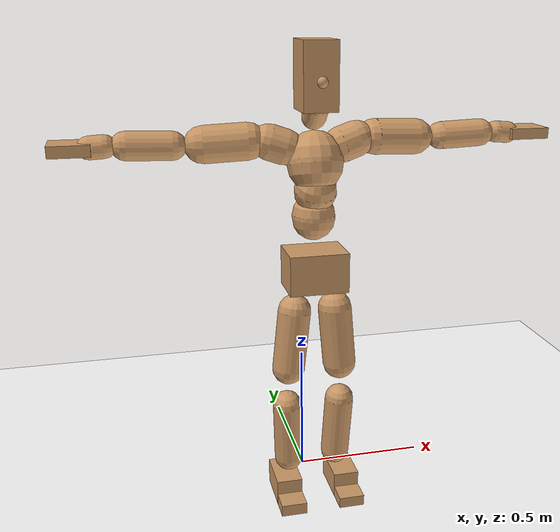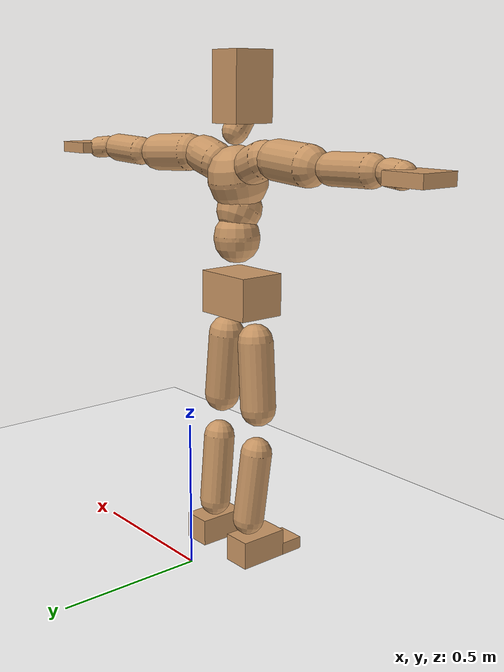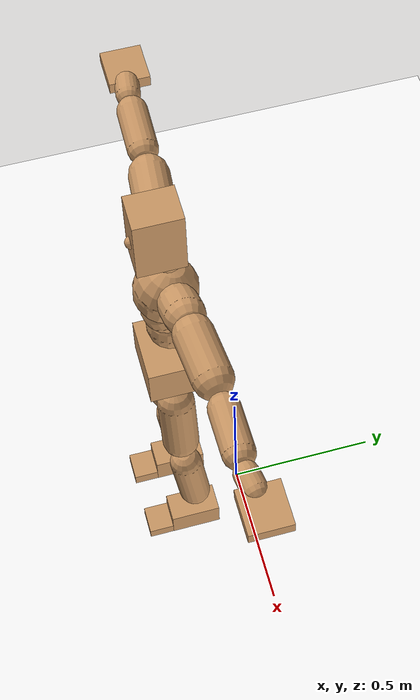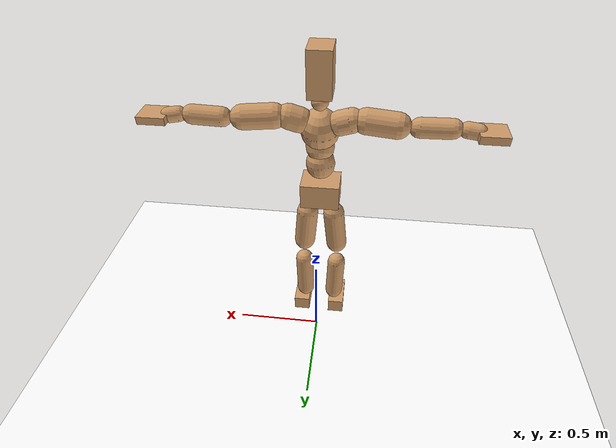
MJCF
<mujoco model="humanoid">
  <option integrator="implicitfast" />

  <visual>
    <global offwidth="1280" offheight="960" />
    <headlight active="1" ambient="0.34 0.34 0.34" diffuse="0.5 0.5 0.5" />
  </visual>

  <default>
    <joint damping="2" stiffness="2" armature="0.01" limited="true" solimplimit="0 .99 .01" />
    <geom condim="1" friction="0.7 0.005 0.0001" solimp=".99 .99 .003" solref="0.015 1" margin="0.001" rgba="0.8 0.6 .4 1" />
    <default class="smplcontact">
      <geom condim="3" friction="1. 0.005 0.0001" solref="0.015 1" solimp="0.98 0.98 0.001" priority="1" />
    </default>
    <default class="stiff_medium">
      <joint stiffness="10" />
    </default>
    <default class="stiff_medium_higher">
      <joint stiffness="50" />
    </default>
    <default class="stiff_high">
      <joint stiffness="100" />
    </default>
  </default>

  <asset>
    <texture type="skybox" builtin="gradient" rgb1="0.99 0.99 0.99" rgb2="0.608 0.828 0.892" width="100" />
    <texture builtin="flat" height="1278" mark="cross" markrgb="1 1 1" name="texgeom" random="0.01" rgb1="0.8 0.6 0.4" rgb2="0.8 0.6 0.4" type="cube" width="127" />
    <texture name="texplane" type="2d" builtin="checker" markrgb="1 1 1" rgb1="0.756 0.772 0.76" rgb2="0.6 0.6 0.6" width="100" height="100" />
    <material name="MatPlane" reflectance="0.5" texture="texplane" texrepeat="1 1" texuniform="true" />
    <material name="geom" texture="texgeom" texuniform="true" />
  </asset>

  <worldbody>
    <light name="tracking_light" pos="0 0 7" dir="0 0 -1" directional="true" cutoff="100" exponent="1" diffuse="1 1 1" specular="0.1 0.1 0.1" mode="trackcom" />
    <camera name="back" pos="0 3 2.4" xyaxes="-1 0 0 0 -1 2" mode="trackcom" />
    <camera name="side" pos="-3 0 2.4" xyaxes="0 -1 0 1 0 2" mode="trackcom" />
    <camera name="front_side" pos="-2.8 -2.8 0.8" xyaxes="0.5 -0.5 0 0.1 0.1 1" mode="trackcom" />
    <geom condim="3" name="floor" pos="0 0 0" rgba="1 1 1 1" size="100 100 .2" type="plane" material="MatPlane" />
    <body name="Pelvis" pos="-0.0018 -0.2233 0.9367" euler="90 0 0">
      <site name="Pelvis" size="0.01" />
      <freejoint name="Pelvis" />
      <geom type="box" pos="-0.0000 -0.0121 -0.0055" size="0.1069 0.0722 0.083" quat="1.0000 0.0000 0.0000 0.0000" density="3165.830099" name="Pelvis" />
      <body name="L_Hip" pos="0.0695 -0.0914 -0.0068">
        <joint name="L_Hip_x" type="hinge" pos="0 0 0" axis="1 0 0" stiffness="10.0" range="-160.0 22.92" class="stiff_medium" damping="14.999999999999998" armature="0.009999999999999998"/>
        <joint name="L_Hip_y" type="hinge" pos="0 0 0" axis="0 1 0" stiffness="10.0" range="-70.0 70.0" class="stiff_medium" damping="10.000000000000004" armature="0.010000000000000009"/>
        <joint name="L_Hip_z" type="hinge" pos="0 0 0" axis="0 0 1" stiffness="10.0" range="-28.65 90.0" class="stiff_medium" damping="10.0" armature="0.01"/>
        <geom type="capsule" density="2040.816327" fromto="0.0069 -0.075 -0.0009 0.0274 -0.3002 -0.0036" size="0.0615" name="L_Hip" />
        <body name="L_Knee" pos="0.0343 -0.3752 -0.0045">
          <joint name="L_Knee_x" type="hinge" pos="0 0 0" axis="1 0 0" range="-5.16 171.89" damping="7.999999999999999" armature="0.009999999999999998" stiffness="2.0"/>
          <joint name="L_Knee_y" type="hinge" pos="0 0 0" axis="0 1 0" range="-4.58 6.88" damping="8.000000000000005" armature="0.010000000000000014" stiffness="2.0"/>
          <joint name="L_Knee_z" type="hinge" pos="0 0 0" axis="0 0 1" range="-6.88 4.58" damping="7.999999999999997" armature="0.009999999999999993" stiffness="2.0"/>
          <geom type="capsule" density="1234.567901" fromto="-0.0027 -0.0796 -0.0087 -0.0109 -0.3184 -0.035" size="0.0541" name="L_Knee" />
          <body name="L_Ankle" pos="-0.0136 -0.398 -0.0437">
            <joint name="L_Ankle_x" type="hinge" pos="0 0 0" axis="1 0 0" range="-45.84 45.84" class="stiff_medium" damping="5.999999999999975" armature="0.009999999999999915" stiffness="10.0"/>
            <joint name="L_Ankle_y" type="hinge" pos="0 0 0" axis="0 1 0" range="-74.48 22.92" class="stiff_medium" damping="3.0" armature="0.01" stiffness="10.0"/>
            <joint name="L_Ankle_z" type="hinge" pos="0 0 0" axis="0 0 1" range="-4.58 4.58" class="stiff_medium" damping="5.999999999999662" armature="0.009999999999998873" stiffness="10.0"/>
            <geom type="box" pos="0.0233 -0.0239 0.0242" size="0.0483 0.0464 0.085" quat="1.0000 0.0000 0.0000 0.0000" density="449.071558" name="L_Ankle" class="smplcontact" />
            <body name="L_Toe" pos="0.0264 -0.0558 0.1193">
              <joint name="L_Toe_x" type="hinge" pos="0 0 0" axis="1 0 0" range="-91.67 22.92" armature="0.0099999999999989" damping="1.99999999999989" stiffness="2.0"/>
              <joint name="L_Toe_y" type="hinge" pos="0 0 0" axis="0 1 0" range="-4.58 4.58" armature="0.009999999999999976" damping="1.9999999999999976" stiffness="2.0"/>
              <joint name="L_Toe_z" type="hinge" pos="0 0 0" axis="0 0 1" range="-4.58 4.58" armature="0.009999999999997719" damping="1.999999999999772" stiffness="2.0"/>
              <geom type="box" pos="-0.003 0.0055 0.0248" size="0.0478 0.02 0.0496" quat="1.0000 0.0000 0.0000 0.0000" density="423.206892" name="L_Toe" class="smplcontact" />
            </body>
          </body>
        </body>
      </body>
      <body name="R_Hip" pos="-0.0677 -0.0905 -0.0043">
        <joint name="R_Hip_x" type="hinge" pos="0 0 0" axis="1 0 0" stiffness="10.0" range="-160.0 22.92" class="stiff_medium" damping="14.999999999999998" armature="0.009999999999999998"/>
        <joint name="R_Hip_y" type="hinge" pos="0 0 0" axis="0 1 0" stiffness="10.0" range="-70.0 70.0" class="stiff_medium" damping="10.000000000000004" armature="0.010000000000000009"/>
        <joint name="R_Hip_z" type="hinge" pos="0 0 0" axis="0 0 1" stiffness="10.0" range="-90.0 28.65" class="stiff_medium" damping="10.0" armature="0.01"/>
        <geom type="capsule" density="2040.816327" fromto="-0.0077 -0.0765 -0.0018 -0.0306 -0.3061 -0.0071" size="0.0606" name="R_Hip" />
        <body name="R_Knee" pos="-0.0383 -0.3826 -0.0089">
          <joint name="R_Knee_x" type="hinge" pos="0 0 0" axis="1 0 0" range="-5.16 171.89" damping="7.999999999999999" armature="0.009999999999999998" stiffness="2.0"/>
          <joint name="R_Knee_y" type="hinge" pos="0 0 0" axis="0 1 0" range="-6.88 4.58" damping="8.000000000000005" armature="0.010000000000000014" stiffness="2.0"/>
          <joint name="R_Knee_z" type="hinge" pos="0 0 0" axis="0 0 1" range="-4.58 6.88" damping="7.999999999999997" armature="0.009999999999999993" stiffness="2.0"/>
          <geom type="capsule" density="1234.567901" fromto="0.0032 -0.0797 -0.0085 0.0126 -0.3187 -0.0338" size="0.0541" name="R_Knee" />
          <body name="R_Ankle" pos="0.0158 -0.3984 -0.0423">
            <joint name="R_Ankle_x" type="hinge" pos="0 0 0" axis="1 0 0" range="-45.84 45.84" class="stiff_medium" damping="5.999999999999975" armature="0.009999999999999915" stiffness="10.0"/>
            <joint name="R_Ankle_y" type="hinge" pos="0 0 0" axis="0 1 0" range="-22.92 74.48" class="stiff_medium" damping="3.0" armature="0.01" stiffness="10.0"/>
            <joint name="R_Ankle_z" type="hinge" pos="0 0 0" axis="0 0 1" range="-4.58 4.58" class="stiff_medium" damping="5.999999999999662" armature="0.009999999999998873" stiffness="10.0"/>
            <geom type="box" pos="-0.0212 -0.0174 0.0256" size="0.0483 0.0478 0.0865" quat="1.0000 0.0000 0.0000 0.0000" density="434.700981" name="R_Ankle" class="smplcontact" />
            <body name="R_Toe" pos="-0.0254 -0.0481 0.1233">
              <joint name="R_Toe_x" type="hinge" pos="0 0 0" axis="1 0 0" range="-91.67 22.92" armature="0.0099999999999989" damping="1.99999999999989" stiffness="2.0"/>
              <joint name="R_Toe_y" type="hinge" pos="0 0 0" axis="0 1 0" range="-4.58 4.58" armature="0.009999999999999976" damping="1.9999999999999976" stiffness="2.0"/>
              <joint name="R_Toe_z" type="hinge" pos="0 0 0" axis="0 0 1" range="-4.58 4.58" armature="0.009999999999997719" damping="1.999999999999772" stiffness="2.0"/>
              <geom type="box" pos="0.0042 0.0045 0.0227" size="0.0479 0.0216 0.0493" quat="1.0000 0.0000 0.0000 0.0000" density="407.384095" name="R_Toe" class="smplcontact" />
            </body>
          </body>
        </body>
      </body>
      <body name="Torso" pos="-0.0025 0.109 -0.0267">
        <joint name="Torso_x" type="hinge" pos="0 0 0" axis="1 0 0" range="-25.78 57.3" class="stiff_medium" damping="18.053717281417164" armature="0.011931813295142098" stiffness="12.1407162"/>
        <joint name="Torso_y" type="hinge" pos="0 0 0" axis="0 1 0" range="-57.3 57.3" class="stiff_high" damping="27.92105766251101" armature="0.016191035286757076" stiffness="120.37301000000001"/>
        <joint name="Torso_z" type="hinge" pos="0 0 0" axis="0 0 1" range="-34.38 34.38" class="stiff_high" damping="25.07854148077432" armature="0.013391349684433186" stiffness="117.41408775510203"/>
        <geom type="capsule" density="2040.816327" fromto="0.0025 0.0608 0.0005 0.003 0.0743 0.0006" size="0.0769" name="Torso" />
        <body name="Spine" pos="0.0055 0.1352 0.0011">
          <joint name="Spine_x" type="hinge" pos="0 0 0" axis="1 0 0" stiffness="12.190687254901961" range="-25.78 57.3" class="stiff_medium" damping="17.897639130551035" armature="0.011678331162853713"/>
          <joint name="Spine_y" type="hinge" pos="0 0 0" axis="0 1 0" stiffness="12.566525652173915" range="-57.3 57.3" class="stiff_high" damping="11.426564460795205" armature="0.016234396616284636"/>
          <joint name="Spine_z" type="hinge" pos="0 0 0" axis="0 0 1" stiffness="24.74511531914893" range="-34.38 34.38" class="stiff_high" damping="15.904489564502232" armature="0.014197683565519115"/>
          <geom type="capsule" density="2040.816327" fromto="0.0007 0.0238 0.0114 0.0008 0.0291 0.014" size="0.0755" name="Spine" />
          <body name="Chest" pos="0.0015 0.0529 0.0254">
            <joint name="Chest_x" type="hinge" pos="0 0 0" axis="1 0 0" stiffness="12.247576875000002" range="-25.78 57.3" class="stiff_medium" damping="17.841554463310477" armature="0.01155134853443858"/>
            <joint name="Chest_y" type="hinge" pos="0 0 0" axis="0 1 0" stiffness="13.927440444444446" range="-57.3 57.3" class="stiff_high" damping="12.041082842482275" armature="0.016265963920949165"/>
            <joint name="Chest_z" type="hinge" pos="0 0 0" axis="0 0 1" stiffness="24.021538260869562" range="-34.38 34.38" class="stiff_high" damping="15.880497596953557" armature="0.014581254885378956"/>
            <geom type="capsule" density="2040.816327" fromto="-0.0009 0.0682 -0.0173 -0.001 0.0833 -0.0212" size="0.1002" name="Chest" />
            <body name="Neck" pos="-0.0028 0.2139 -0.0429">
              <joint name="Neck_x" type="hinge" pos="0 0 0" axis="1 0 0" range="-28.65 57.3" class="stiff_medium_higher" damping="10.000000000000009" armature="0.010000000000000021" stiffness="50.0"/>
              <joint name="Neck_y" type="hinge" pos="0 0 0" axis="0 1 0" range="-40.11 40.11" class="stiff_medium_higher" damping="10.0" armature="0.01" stiffness="50.0"/>
              <joint name="Neck_z" type="hinge" pos="0 0 0" axis="0 0 1" range="-40.11 40.11" class="stiff_medium_higher" damping="10.000000000000004" armature="0.010000000000000009" stiffness="50.0"/>
              <geom type="capsule" density="1000" fromto="0.001 0.013 0.0103 0.0041 0.052 0.0411" size="0.0436" name="Neck" />
              <body name="Head" pos="0.0052 0.065 0.0513">
                <joint name="Head_x" type="hinge" pos="0 0 0" axis="1 0 0" range="-28.65 57.3" class="stiff_medium_higher" damping="2.000000000000006" armature="0.010000000000000064" stiffness="50.0"/>
                <joint name="Head_y" type="hinge" pos="0 0 0" axis="0 1 0" range="-40.11 40.11" class="stiff_medium_higher" damping="1.9999999999999998" armature="0.009999999999999998" stiffness="50.0"/>
                <joint name="Head_z" type="hinge" pos="0 0 0" axis="0 0 1" range="-40.11 40.11" class="stiff_medium_higher" damping="2.000000000000005" armature="0.01000000000000005" stiffness="50.0"/>
                <geom type="box" pos="-0.0042 0.0876 -0.0116" size="0.0606 0.1154 0.076" quat="1.0000 0.0000 0.0000 0.0000" density="1018.069894" name="Head" />
                <geom type="capsule" name="nose" size="0.02 0.01" pos="0 0.07 0.05" quat="1 0 0 0" mass="0" contype="0" conaffinity="0" />
              </body>
            </body>
            <body name="L_Thorax" pos="0.0788 0.1217 -0.0341">
              <joint name="L_Thorax_x" type="hinge" pos="0 0 0" axis="1 0 0" range="-10.89 4.58" class="stiff_medium_higher" damping="36.16327912407782" armature="0.020035057805433777" stiffness="81.59339803921569"/>
              <joint name="L_Thorax_y" type="hinge" pos="0 0 0" axis="0 1 0" range="-28.65 17.19" class="stiff_medium_higher" damping="32.800195013512344" armature="0.01656242759637009" stiffness="81.19679215686274"/>
              <joint name="L_Thorax_z" type="hinge" pos="0 0 0" axis="0 0 1" range="-31.51 40.11" class="stiff_medium_higher" damping="32.79780433224978" armature="0.01655928155480113" stiffness="81.20038039215686"/>
              <geom type="capsule" density="1000" fromto="0.0182 0.0061 -0.0018 0.0728 0.0244 -0.0071" size="0.0638225" name="L_Thorax" />
              <body name="L_Shoulder" pos="0.091 0.0305 -0.0089">
                <joint name="L_Shoulder_x" type="hinge" pos="0 0 0" axis="1 0 0" range="-97.4 97.4" class="stiff_medium" damping="11.22137686690565" armature="0.021352669067825198" stiffness="16.380895"/>
                <joint name="L_Shoulder_y" type="hinge" pos="0 0 0" axis="0 1 0" range="-108.86 80.21" class="stiff_medium" damping="9.880503135074896" armature="0.016668706823041116" stiffness="16.268732254901963"/>
                <joint name="L_Shoulder_z" type="hinge" pos="0 0 0" axis="0 0 1" range="-97.4 85.94" class="stiff_medium" damping="9.881849569204586" armature="0.01666446127779677" stiffness="16.277312352941177"/>
                <geom type="capsule" density="1000" fromto="0.0519 -0.0026 -0.0055 0.2077 -0.0102 -0.022" size="0.0633325" name="L_Shoulder" />
                <body name="L_Elbow" pos="0.2596 -0.0128 -0.0275">
                  <joint name="L_Elbow_x" type="hinge" pos="0 0 0" axis="1 0 0" range="-17.19 4.58" damping="9.892685419265769" armature="0.02354630461220535" stiffness="3.325030450980392"/>
                  <joint name="L_Elbow_y" type="hinge" pos="0 0 0" axis="0 1 0" range="-180.0 17.19" damping="8.452575595330664" armature="0.017190453292347755" stiffness="3.3249168235294118"/>
                  <joint name="L_Elbow_z" type="hinge" pos="0 0 0" axis="0 0 1" range="-100.84 4.58" damping="8.449688464016475" armature="0.017168164994489584" stiffness="3.3269594117647054"/>
                  <geom type="capsule" density="1000" fromto="0.0498 0.0018 -0.0002 0.1994 0.0072 -0.0009" size="0.0496125" name="L_Elbow" />
                  <body name="L_Wrist" pos="0.2492 0.009 -0.0012">
                    <joint name="L_Wrist_x" type="hinge" pos="0 0 0" axis="1 0 0" range="-180.0 22.92" armature="0.024385067635279808" damping="4.163169605467166" stiffness="3.553810352941176"/>
                    <joint name="L_Wrist_y" type="hinge" pos="0 0 0" axis="0 1 0" range="-17.19 17.19" armature="0.019123125548123024" damping="3.678008453377803" stiffness="3.537012333333333"/>
                    <joint name="L_Wrist_z" type="hinge" pos="0 0 0" axis="0 0 1" range="-22.92 22.92" armature="0.01882468980318541" damping="3.6521538722536544" stiffness="3.542748392156863"/>
                    <geom type="capsule" density="1000" fromto="0.0168 -0.0016 -0.003 0.0672 -0.0065 -0.012" size="0.038955" name="L_Wrist" class="smplcontact" />
                    <body name="L_Hand" pos="0.084 -0.0082 -0.0149">
                      <joint name="L_Hand_x" type="hinge" pos="0 0 0" axis="1 0 0" range="-17.19 17.19" armature="0.027184542120068905" damping="4.470902347620247" stiffness="3.676532000000001"/>
                      <joint name="L_Hand_y" type="hinge" pos="0 0 0" axis="0 1 0" range="-51.57 51.57" armature="0.0227367612139997" damping="4.088824529852773" stiffness="3.676532000000001"/>
                      <joint name="L_Hand_z" type="hinge" pos="0 0 0" axis="0 0 1" range="-91.67 91.67" armature="0.021551144443094902" damping="3.9807906797936665" stiffness="3.676532000000001"/>
                      <geom type="box" pos="0.0493 0.001 -0.0058" size="0.0716625 0.019355 0.065905" quat="1.0000 0.0000 0.0000 0.0000" density="400.552564" name="L_Hand" class="smplcontact" />
                    </body>
                  </body>
                </body>
              </body>
            </body>
            <body name="R_Thorax" pos="-0.0818 0.1188 -0.0386">
              <joint name="R_Thorax_x" type="hinge" pos="0 0 0" axis="1 0 0" range="-10.89 4.58" class="stiff_medium_higher" damping="36.16327912407782" armature="0.020035057805433777" stiffness="81.59339803921569"/>
              <joint name="R_Thorax_y" type="hinge" pos="0 0 0" axis="0 1 0" range="-17.19 28.65" class="stiff_medium_higher" damping="32.800195013512344" armature="0.01656242759637009" stiffness="81.19679215686274"/>
              <joint name="R_Thorax_z" type="hinge" pos="0 0 0" axis="0 0 1" range="-40.11 31.51" class="stiff_medium_higher" damping="32.79780433224978" armature="0.01655928155480113" stiffness="81.20038039215686"/>
              <geom type="capsule" density="1000" fromto="-0.0192 0.0065 -0.0018 -0.0768 0.026 -0.0073" size="0.0625975" name="R_Thorax" />
              <body name="R_Shoulder" pos="-0.096 0.0326 -0.0091">
                <joint name="R_Shoulder_x" type="hinge" pos="0 0 0" axis="1 0 0" range="-97.4 97.4" class="stiff_medium" damping="11.22137686690565" armature="0.021352669067825198" stiffness="16.380895"/>
                <joint name="R_Shoulder_y" type="hinge" pos="0 0 0" axis="0 1 0" range="-80.21 108.86" class="stiff_medium" damping="9.880503135074896" armature="0.016668706823041116" stiffness="16.268732254901963"/>
                <joint name="R_Shoulder_z" type="hinge" pos="0 0 0" axis="0 0 1" range="-85.94 97.4" class="stiff_medium" damping="9.881849569204586" armature="0.01666446127779677" stiffness="16.277312352941177"/>
                <geom type="capsule" density="1000" fromto="-0.0507 -0.0027 -0.0043 -0.203 -0.0107 -0.0171" size="0.0650475" name="R_Shoulder" />
                <body name="R_Elbow" pos="-0.2537 -0.0133 -0.0214">
                  <joint name="R_Elbow_x" type="hinge" pos="0 0 0" axis="1 0 0" range="-17.19 4.58" damping="9.892685419265769" armature="0.02354630461220535" stiffness="3.325030450980392"/>
                  <joint name="R_Elbow_y" type="hinge" pos="0 0 0" axis="0 1 0" range="-17.19 180.0" damping="8.452575595330664" armature="0.017190453292347755" stiffness="3.3249168235294118"/>
                  <joint name="R_Elbow_z" type="hinge" pos="0 0 0" axis="0 0 1" range="-4.58 100.84" damping="8.449688464016475" armature="0.017168164994489584" stiffness="3.3269594117647054"/>
                  <geom type="capsule" density="1000" fromto="-0.0511 0.0016 -0.0011 -0.2042 0.0062 -0.0044" size="0.04998" name="R_Elbow" />
                  <body name="R_Wrist" pos="-0.2553 0.0078 -0.0056">
                    <joint name="R_Wrist_x" type="hinge" pos="0 0 0" axis="1 0 0" range="-180.0 22.92" armature="0.024385067635279808" damping="4.163169605467166" stiffness="3.553810352941176"/>
                    <joint name="R_Wrist_y" type="hinge" pos="0 0 0" axis="0 1 0" range="-17.19 17.19" armature="0.019123125548123024" damping="3.678008453377803" stiffness="3.537012333333333"/>
                    <joint name="R_Wrist_z" type="hinge" pos="0 0 0" axis="0 0 1" range="-22.92 22.92" armature="0.01882468980318541" damping="3.6521538722536544" stiffness="3.542748392156863"/>
                    <geom type="capsule" density="1000" fromto="-0.0169 -0.0012 -0.0021 -0.0677 -0.0049 -0.0083" size="0.039935" name="R_Wrist" class="smplcontact" />
                    <body name="R_Hand" pos="-0.0846 -0.0061 -0.0103">
                      <joint name="R_Hand_x" type="hinge" pos="0 0 0" axis="1 0 0" range="-17.19 17.19" armature="0.027184542120068905" damping="4.470902347620247" stiffness="3.676532000000001"/>
                      <joint name="R_Hand_y" type="hinge" pos="0 0 0" axis="0 1 0" range="-51.57 51.57" armature="0.0227367612139997" damping="4.088824529852773" stiffness="3.676532000000001"/>
                      <joint name="R_Hand_z" type="hinge" pos="0 0 0" axis="0 0 1" range="-91.67 91.67" armature="0.021551144443094902" damping="3.9807906797936665" stiffness="3.676532000000001"/>
                      <geom type="box" pos="-0.0462 -0.0009 -0.0079" size="0.0697025 0.02009 0.066885" quat="1.0000 0.0000 0.0000 0.0000" density="403.679611" name="R_Hand" class="smplcontact" />
                    </body>
                  </body>
                </body>
              </body>
            </body>
          </body>
        </body>
      </body>
    </body>
  </worldbody>
  <actuator>
    <general name="L_Hip_x" joint="L_Hip_x" biastype="affine" gainprm="287.33006409732246" biasprm="-215.3247604770444 -180.0 -1.9999999999999998" ctrllimited="true" ctrlrange="-1 1" forcerange="-360.0 360.0" />
    <general name="L_Hip_y" joint="L_Hip_y" biastype="affine" gainprm="219.9114857512855" biasprm="0.0 -180.0 -2.000000000000001" ctrllimited="true" ctrlrange="-1 1" forcerange="-360.0 360.0" />
    <general name="L_Hip_z" joint="L_Hip_z" biastype="affine" gainprm="186.3749841742145" biasprm="96.3683546488669 -180.0 -2.0" ctrllimited="true" ctrlrange="-1 1" forcerange="-360.0 360.0" />
    <general name="L_Knee_x" joint="L_Knee_x" biastype="affine" gainprm="278.10948965903646" biasprm="261.8988715665131 -180.0 -1.9999999999999998" ctrllimited="true" ctrlrange="-1 1" forcerange="-360.0 360.0" />
    <general name="L_Knee_y" joint="L_Knee_y" biastype="affine" gainprm="18.001325905069514" biasprm="3.612831551628262 -180.0 -2.0000000000000013" ctrllimited="true" ctrlrange="-1 1" forcerange="-360.0 360.0" />
    <general name="L_Knee_z" joint="L_Knee_z" biastype="affine" gainprm="18.001325905069514" biasprm="-3.612831551628262 -180.0 -1.9999999999999993" ctrllimited="true" ctrlrange="-1 1" forcerange="-360.0 360.0" />
    <general name="L_Ankle_x" joint="L_Ankle_x" biastype="affine" gainprm="72.00530362027807" biasprm="0.0 -90.0 -1.9999999999999916" ctrllimited="true" ctrlrange="-1 1" forcerange="-180.0 180.0" />
    <general name="L_Ankle_y" joint="L_Ankle_y" biastype="affine" gainprm="76.49778111491148" biasprm="-40.49512930477244 -90.0 -2.0" ctrllimited="true" ctrlrange="-1 1" forcerange="-180.0 180.0" />
    <general name="L_Ankle_z" joint="L_Ankle_z" biastype="affine" gainprm="7.1942471767206255" biasprm="0.0 -90.0 -1.9999999999998872" ctrllimited="true" ctrlrange="-1 1" forcerange="-180.0 180.0" />
    <general name="L_Toe_x" joint="L_Toe_x" biastype="affine" gainprm="71.99902043497087" biasprm="-43.19689898685965 -72.0 -0.7999999999999561" ctrllimited="true" ctrlrange="-1 1" forcerange="-144.0 144.0" />
    <general name="L_Toe_y" joint="L_Toe_y" biastype="affine" gainprm="5.755397741376501" biasprm="0.0 -72.0 -0.799999999999999" ctrllimited="true" ctrlrange="-1 1" forcerange="-144.0 144.0" />
    <general name="L_Toe_z" joint="L_Toe_z" biastype="affine" gainprm="5.755397741376501" biasprm="0.0 -72.0 -0.7999999999999088" ctrllimited="true" ctrlrange="-1 1" forcerange="-144.0 144.0" />
    <general name="R_Hip_x" joint="R_Hip_x" biastype="affine" gainprm="287.33006409732246" biasprm="-215.3247604770444 -180.0 -1.9999999999999998" ctrllimited="true" ctrlrange="-1 1" forcerange="-360.0 360.0" />
    <general name="R_Hip_y" joint="R_Hip_y" biastype="affine" gainprm="219.9114857512855" biasprm="0.0 -180.0 -2.000000000000001" ctrllimited="true" ctrlrange="-1 1" forcerange="-360.0 360.0" />
    <general name="R_Hip_z" joint="R_Hip_z" biastype="affine" gainprm="186.3749841742145" biasprm="-96.3683546488669 -180.0 -2.0" ctrllimited="true" ctrlrange="-1 1" forcerange="-360.0 360.0" />
    <general name="R_Knee_x" joint="R_Knee_x" biastype="affine" gainprm="278.10948965903646" biasprm="261.8988715665131 -180.0 -1.9999999999999998" ctrllimited="true" ctrlrange="-1 1" forcerange="-360.0 360.0" />
    <general name="R_Knee_y" joint="R_Knee_y" biastype="affine" gainprm="18.001325905069514" biasprm="-3.612831551628262 -180.0 -2.0000000000000013" ctrllimited="true" ctrlrange="-1 1" forcerange="-360.0 360.0" />
    <general name="R_Knee_z" joint="R_Knee_z" biastype="affine" gainprm="18.001325905069514" biasprm="3.612831551628262 -180.0 -1.9999999999999993" ctrllimited="true" ctrlrange="-1 1" forcerange="-360.0 360.0" />
    <general name="R_Ankle_x" joint="R_Ankle_x" biastype="affine" gainprm="72.00530362027807" biasprm="0.0 -90.0 -1.9999999999999916" ctrllimited="true" ctrlrange="-1 1" forcerange="-180.0 180.0" />
    <general name="R_Ankle_y" joint="R_Ankle_y" biastype="affine" gainprm="76.49778111491148" biasprm="40.49512930477244 -90.0 -2.0" ctrllimited="true" ctrlrange="-1 1" forcerange="-180.0 180.0" />
    <general name="R_Ankle_z" joint="R_Ankle_z" biastype="affine" gainprm="7.1942471767206255" biasprm="0.0 -90.0 -1.9999999999998872" ctrllimited="true" ctrlrange="-1 1" forcerange="-180.0 180.0" />
    <general name="R_Toe_x" joint="R_Toe_x" biastype="affine" gainprm="71.99902043497087" biasprm="-43.19689898685965 -72.0 -0.7999999999999561" ctrllimited="true" ctrlrange="-1 1" forcerange="-144.0 144.0" />
    <general name="R_Toe_y" joint="R_Toe_y" biastype="affine" gainprm="5.755397741376501" biasprm="0.0 -72.0 -0.799999999999999" ctrllimited="true" ctrlrange="-1 1" forcerange="-144.0 144.0" />
    <general name="R_Toe_z" joint="R_Toe_z" biastype="affine" gainprm="5.755397741376501" biasprm="0.0 -72.0 -0.7999999999999088" ctrllimited="true" ctrlrange="-1 1" forcerange="-144.0 144.0" />
    <general name="Torso_x" joint="Torso_x" biastype="affine" gainprm="211.25130900764412" biasprm="80.14734304189867 -291.3771888 -4.814324608377911" ctrllimited="true" ctrlrange="-1 1" forcerange="-437.06578319999994 437.06578319999994" />
    <general name="Torso_y" joint="Torso_y" biastype="affine" gainprm="288.91650442455887" biasprm="0.0 -288.895224 -5.584211532502202" ctrllimited="true" ctrlrange="-1 1" forcerange="-433.34283600000003 433.34283600000003" />
    <general name="Torso_z" joint="Torso_z" biastype="affine" gainprm="169.0887407620819" biasprm="0.0 -281.79381061224484 -5.015708296154864" ctrllimited="true" ctrlrange="-1 1" forcerange="-422.6907159183673 422.6907159183673" />
    <general name="Spine_x" joint="Spine_x" biastype="affine" gainprm="212.12081708168446" biasprm="80.47722862800545 -292.5764941176471 -4.772703768146942" ctrllimited="true" ctrlrange="-1 1" forcerange="-438.8647411764706 438.8647411764706" />
    <general name="Spine_y" joint="Spine_y" biastype="affine" gainprm="301.6188316789318" biasprm="0.0 -301.59661565217397 -5.713282230397603" ctrllimited="true" ctrlrange="-1 1" forcerange="-452.3949234782609 452.3949234782609" />
    <general name="Spine_z" joint="Spine_z" biastype="affine" gainprm="178.1779541674113" biasprm="0.0 -296.9413838297872 -5.301496521500744" ctrllimited="true" ctrlrange="-1 1" forcerange="-445.41207574468075 445.41207574468075" />
    <general name="Chest_x" joint="Chest_x" biastype="affine" gainprm="213.110709812614" biasprm="80.85278735307645 -293.94184500000006 -4.757747856882793" ctrllimited="true" ctrlrange="-1 1" forcerange="-440.91276750000003 440.91276750000003" />
    <general name="Chest_y" joint="Chest_y" biastype="affine" gainprm="334.2831926185209" biasprm="0.0 -334.2585706666667 -6.020541421241138" ctrllimited="true" ctrlrange="-1 1" forcerange="-501.38785600000006 501.38785600000006" />
    <general name="Chest_z" joint="Chest_z" biastype="affine" gainprm="172.96781559000394" biasprm="0.0 -288.25845913043474 -5.293499198984519" ctrllimited="true" ctrlrange="-1 1" forcerange="-432.3876886956522 432.3876886956522" />
    <general name="Neck_x" joint="Neck_x" biastype="affine" gainprm="27.00198885760427" biasprm="9.000662952534757 -36.0 -0.8000000000000007" ctrllimited="true" ctrlrange="-1 1" forcerange="-72.0 72.0" />
    <general name="Neck_y" joint="Neck_y" biastype="affine" gainprm="25.20185626709732" biasprm="0.0 -36.0 -0.8" ctrllimited="true" ctrlrange="-1 1" forcerange="-72.0 72.0" />
    <general name="Neck_z" joint="Neck_z" biastype="affine" gainprm="25.20185626709732" biasprm="0.0 -36.0 -0.8000000000000004" ctrllimited="true" ctrlrange="-1 1" forcerange="-72.0 72.0" />
    <general name="Head_x" joint="Head_x" biastype="affine" gainprm="18.001325905069514" biasprm="6.000441968356505 -24.0 -0.8000000000000025" ctrllimited="true" ctrlrange="-1 1" forcerange="-48.0 48.0" />
    <general name="Head_y" joint="Head_y" biastype="affine" gainprm="16.801237511398213" biasprm="0.0 -24.0 -0.7999999999999999" ctrllimited="true" ctrlrange="-1 1" forcerange="-48.0 48.0" />
    <general name="Head_z" joint="Head_z" biastype="affine" gainprm="16.801237511398213" biasprm="0.0 -24.0 -0.800000000000002" ctrllimited="true" ctrlrange="-1 1" forcerange="-48.0 48.0" />
    <general name="L_Thorax_x" joint="L_Thorax_x" biastype="affine" gainprm="26.43649940837525" biasprm="-10.783084115504067 -195.82415529411765 -2.8930623299262255" ctrllimited="true" ctrlrange="-1 1" forcerange="-391.6483105882353 391.6483105882353" />
    <general name="L_Thorax_y" joint="L_Thorax_y" biastype="affine" gainprm="77.95466229663351" biasprm="-19.48866557415838 -194.8723011764706 -2.6240156010809876" ctrllimited="true" ctrlrange="-1 1" forcerange="-389.7446023529412 389.7446023529412" />
    <general name="L_Thorax_z" joint="L_Thorax_z" biastype="affine" gainprm="121.80103930395238" biasprm="14.625648394498608 -194.88091294117646 -2.623824346579983" ctrllimited="true" ctrlrange="-1 1" forcerange="-389.7618258823529 389.7618258823529" />
    <general name="L_Shoulder_x" joint="L_Shoulder_x" biastype="affine" gainprm="133.66422615214375" biasprm="0.0 -78.628296 -2.992367164508174" ctrllimited="true" ctrlrange="-1 1" forcerange="-157.256592 157.256592" />
    <general name="L_Shoulder_y" joint="L_Shoulder_y" biastype="affine" gainprm="128.8442213471722" biasprm="-19.523916758853776 -78.08991482352941 -2.634800836019972" ctrllimited="true" ctrlrange="-1 1" forcerange="-156.17982964705882 156.17982964705882" />
    <general name="L_Shoulder_z" joint="L_Shoulder_z" biastype="affine" gainprm="125.00533081422525" biasprm="-7.813685453970898 -78.13109929411766 -2.6351598851212232" ctrllimited="true" ctrlrange="-1 1" forcerange="-156.26219858823532 156.26219858823532" />
    <general name="L_Elbow_x" joint="L_Elbow_x" biastype="affine" gainprm="22.74070522460865" biasprm="-13.172268850818336 -119.70109623529412 -1.582829667082523" ctrllimited="true" ctrlrange="-1 1" forcerange="-239.40219247058823 239.40219247058823" />
    <general name="L_Elbow_y" joint="L_Elbow_y" biastype="affine" gainprm="205.97549020302841" biasprm="-170.06374339446756 -119.69700564705883 -1.3524120952529062" ctrllimited="true" ctrlrange="-1 1" forcerange="-239.39401129411766 239.39401129411766" />
    <general name="L_Elbow_z" joint="L_Elbow_z" biastype="affine" gainprm="110.18447004367512" biasprm="-100.6104827016142 -119.77053882352939 -1.351950154242636" ctrllimited="true" ctrlrange="-1 1" forcerange="-239.54107764705878 239.54107764705878" />
    <general name="L_Wrist_x" joint="L_Wrist_x" biastype="affine" gainprm="37.758760049027664" biasprm="-29.22898693328043 -21.322862117647055 -1.6652678421868665" ctrllimited="true" ctrlrange="-1 1" forcerange="-42.64572423529411 42.64572423529411" />
    <general name="L_Wrist_y" joint="L_Wrist_y" biastype="affine" gainprm="6.367091174258372" biasprm="0.0 -21.222074 -1.4712033813511214" ctrllimited="true" ctrlrange="-1 1" forcerange="-42.444148 42.444148" />
    <general name="L_Wrist_z" joint="L_Wrist_z" biastype="affine" gainprm="8.50322245425023" biasprm="0.0 -21.256490352941178 -1.4608615489014618" ctrllimited="true" ctrlrange="-1 1" forcerange="-42.512980705882356 42.512980705882356" />
    <general name="L_Hand_x" joint="L_Hand_x" biastype="affine" gainprm="6.618245073241706" biasprm="0.0 -22.059192000000003 -1.7883609390480988" ctrllimited="true" ctrlrange="-1 1" forcerange="-44.118384000000006 44.118384000000006" />
    <general name="L_Hand_y" joint="L_Hand_y" biastype="affine" gainprm="19.854735219725114" biasprm="0.0 -22.059192000000003 -1.6355298119411092" ctrllimited="true" ctrlrange="-1 1" forcerange="-44.118384000000006 44.118384000000006" />
    <general name="L_Hand_z" joint="L_Hand_z" biastype="affine" gainprm="35.29345700198179" biasprm="0.0 -22.059192000000003 -1.5923162719174666" ctrllimited="true" ctrlrange="-1 1" forcerange="-44.118384000000006 44.118384000000006" />
    <general name="R_Thorax_x" joint="R_Thorax_x" biastype="affine" gainprm="26.43649940837525" biasprm="-10.783084115504067 -195.82415529411765 -2.8930623299262255" ctrllimited="true" ctrlrange="-1 1" forcerange="-391.6483105882353 391.6483105882353" />
    <general name="R_Thorax_y" joint="R_Thorax_y" biastype="affine" gainprm="77.95466229663351" biasprm="19.488665574158368 -194.8723011764706 -2.6240156010809876" ctrllimited="true" ctrlrange="-1 1" forcerange="-389.7446023529412 389.7446023529412" />
    <general name="R_Thorax_z" joint="R_Thorax_z" biastype="affine" gainprm="121.80103930395238" biasprm="-14.625648394498608 -194.88091294117646 -2.623824346579983" ctrllimited="true" ctrlrange="-1 1" forcerange="-389.7618258823529 389.7618258823529" />
    <general name="R_Shoulder_x" joint="R_Shoulder_x" biastype="affine" gainprm="133.66422615214375" biasprm="0.0 -78.628296 -2.992367164508174" ctrllimited="true" ctrlrange="-1 1" forcerange="-157.256592 157.256592" />
    <general name="R_Shoulder_y" joint="R_Shoulder_y" biastype="affine" gainprm="128.8442213471722" biasprm="19.523916758853776 -78.08991482352941 -2.634800836019972" ctrllimited="true" ctrlrange="-1 1" forcerange="-156.17982964705882 156.17982964705882" />
    <general name="R_Shoulder_z" joint="R_Shoulder_z" biastype="affine" gainprm="125.00533081422525" biasprm="7.813685453970881 -78.13109929411766 -2.6351598851212232" ctrllimited="true" ctrlrange="-1 1" forcerange="-156.26219858823532 156.26219858823532" />
    <general name="R_Elbow_x" joint="R_Elbow_x" biastype="affine" gainprm="22.74070522460865" biasprm="-13.172268850818336 -119.70109623529412 -1.582829667082523" ctrllimited="true" ctrlrange="-1 1" forcerange="-239.40219247058823 239.40219247058823" />
    <general name="R_Elbow_y" joint="R_Elbow_y" biastype="affine" gainprm="205.97549020302841" biasprm="170.06374339446756 -119.69700564705883 -1.3524120952529062" ctrllimited="true" ctrlrange="-1 1" forcerange="-239.39401129411766 239.39401129411766" />
    <general name="R_Elbow_z" joint="R_Elbow_z" biastype="affine" gainprm="110.18447004367512" biasprm="100.61048270161419 -119.77053882352939 -1.351950154242636" ctrllimited="true" ctrlrange="-1 1" forcerange="-239.54107764705878 239.54107764705878" />
    <general name="R_Wrist_x" joint="R_Wrist_x" biastype="affine" gainprm="37.758760049027664" biasprm="-29.22898693328043 -21.322862117647055 -1.6652678421868665" ctrllimited="true" ctrlrange="-1 1" forcerange="-42.64572423529411 42.64572423529411" />
    <general name="R_Wrist_y" joint="R_Wrist_y" biastype="affine" gainprm="6.367091174258372" biasprm="0.0 -21.222074 -1.4712033813511214" ctrllimited="true" ctrlrange="-1 1" forcerange="-42.444148 42.444148" />
    <general name="R_Wrist_z" joint="R_Wrist_z" biastype="affine" gainprm="8.50322245425023" biasprm="0.0 -21.256490352941178 -1.4608615489014618" ctrllimited="true" ctrlrange="-1 1" forcerange="-42.512980705882356 42.512980705882356" />
    <general name="R_Hand_x" joint="R_Hand_x" biastype="affine" gainprm="6.618245073241706" biasprm="0.0 -22.059192000000003 -1.7883609390480988" ctrllimited="true" ctrlrange="-1 1" forcerange="-44.118384000000006 44.118384000000006" />
    <general name="R_Hand_y" joint="R_Hand_y" biastype="affine" gainprm="19.854735219725114" biasprm="0.0 -22.059192000000003 -1.6355298119411092" ctrllimited="true" ctrlrange="-1 1" forcerange="-44.118384000000006 44.118384000000006" />
    <general name="R_Hand_z" joint="R_Hand_z" biastype="affine" gainprm="35.29345700198179" biasprm="0.0 -22.059192000000003 -1.5923162719174666" ctrllimited="true" ctrlrange="-1 1" forcerange="-44.118384000000006 44.118384000000006" />
  </actuator>
  <contact>
    <exclude body1="Torso" body2="Chest" />
    <exclude body1="Head" body2="Chest" />
    <exclude body1="R_Knee" body2="R_Toe" />
    <exclude body1="R_Knee" body2="L_Ankle" />
    <exclude body1="R_Knee" body2="L_Toe" />
    <exclude body1="L_Knee" body2="L_Toe" />
    <exclude body1="L_Knee" body2="R_Ankle" />
    <exclude body1="L_Knee" body2="R_Toe" />
    <exclude body1="L_Shoulder" body2="Chest" />
    <exclude body1="R_Shoulder" body2="Chest" />
  </contact>
  <sensor>
    <framelinvel name="sensor_Pelvis_framelinvel" objtype="xbody" objname="Pelvis" />
    <framelinvel name="sensor_L_Hip_framelinvel" objtype="xbody" objname="L_Hip" />
    <framelinvel name="sensor_L_Knee_framelinvel" objtype="xbody" objname="L_Knee" />
    <framelinvel name="sensor_L_Ankle_framelinvel" objtype="xbody" objname="L_Ankle" />
    <framelinvel name="sensor_L_Toe_framelinvel" objtype="xbody" objname="L_Toe" />
    <framelinvel name="sensor_R_Hip_framelinvel" objtype="xbody" objname="R_Hip" />
    <framelinvel name="sensor_R_Knee_framelinvel" objtype="xbody" objname="R_Knee" />
    <framelinvel name="sensor_R_Ankle_framelinvel" objtype="xbody" objname="R_Ankle" />
    <framelinvel name="sensor_R_Toe_framelinvel" objtype="xbody" objname="R_Toe" />
    <framelinvel name="sensor_Torso_framelinvel" objtype="xbody" objname="Torso" />
    <framelinvel name="sensor_Spine_framelinvel" objtype="xbody" objname="Spine" />
    <framelinvel name="sensor_Chest_framelinvel" objtype="xbody" objname="Chest" />
    <framelinvel name="sensor_Neck_framelinvel" objtype="xbody" objname="Neck" />
    <framelinvel name="sensor_Head_framelinvel" objtype="xbody" objname="Head" />
    <framelinvel name="sensor_L_Thorax_framelinvel" objtype="xbody" objname="L_Thorax" />
    <framelinvel name="sensor_L_Shoulder_framelinvel" objtype="xbody" objname="L_Shoulder" />
    <framelinvel name="sensor_L_Elbow_framelinvel" objtype="xbody" objname="L_Elbow" />
    <framelinvel name="sensor_L_Wrist_framelinvel" objtype="xbody" objname="L_Wrist" />
    <framelinvel name="sensor_L_Hand_framelinvel" objtype="xbody" objname="L_Hand" />
    <framelinvel name="sensor_R_Thorax_framelinvel" objtype="xbody" objname="R_Thorax" />
    <framelinvel name="sensor_R_Shoulder_framelinvel" objtype="xbody" objname="R_Shoulder" />
    <framelinvel name="sensor_R_Elbow_framelinvel" objtype="xbody" objname="R_Elbow" />
    <framelinvel name="sensor_R_Wrist_framelinvel" objtype="xbody" objname="R_Wrist" />
    <framelinvel name="sensor_R_Hand_framelinvel" objtype="xbody" objname="R_Hand" />
    <frameangvel name="sensor_Pelvis_frameangvel" objtype="xbody" objname="Pelvis" />
    <frameangvel name="sensor_L_Hip_frameangvel" objtype="xbody" objname="L_Hip" />
    <frameangvel name="sensor_L_Knee_frameangvel" objtype="xbody" objname="L_Knee" />
    <frameangvel name="sensor_L_Ankle_frameangvel" objtype="xbody" objname="L_Ankle" />
    <frameangvel name="sensor_L_Toe_frameangvel" objtype="xbody" objname="L_Toe" />
    <frameangvel name="sensor_R_Hip_frameangvel" objtype="xbody" objname="R_Hip" />
    <frameangvel name="sensor_R_Knee_frameangvel" objtype="xbody" objname="R_Knee" />
    <frameangvel name="sensor_R_Ankle_frameangvel" objtype="xbody" objname="R_Ankle" />
    <frameangvel name="sensor_R_Toe_frameangvel" objtype="xbody" objname="R_Toe" />
    <frameangvel name="sensor_Torso_frameangvel" objtype="xbody" objname="Torso" />
    <frameangvel name="sensor_Spine_frameangvel" objtype="xbody" objname="Spine" />
    <frameangvel name="sensor_Chest_frameangvel" objtype="xbody" objname="Chest" />
    <frameangvel name="sensor_Neck_frameangvel" objtype="xbody" objname="Neck" />
    <frameangvel name="sensor_Head_frameangvel" objtype="xbody" objname="Head" />
    <frameangvel name="sensor_L_Thorax_frameangvel" objtype="xbody" objname="L_Thorax" />
    <frameangvel name="sensor_L_Shoulder_frameangvel" objtype="xbody" objname="L_Shoulder" />
    <frameangvel name="sensor_L_Elbow_frameangvel" objtype="xbody" objname="L_Elbow" />
    <frameangvel name="sensor_L_Wrist_frameangvel" objtype="xbody" objname="L_Wrist" />
    <frameangvel name="sensor_L_Hand_frameangvel" objtype="xbody" objname="L_Hand" />
    <frameangvel name="sensor_R_Thorax_frameangvel" objtype="xbody" objname="R_Thorax" />
    <frameangvel name="sensor_R_Shoulder_frameangvel" objtype="xbody" objname="R_Shoulder" />
    <frameangvel name="sensor_R_Elbow_frameangvel" objtype="xbody" objname="R_Elbow" />
    <frameangvel name="sensor_R_Wrist_frameangvel" objtype="xbody" objname="R_Wrist" />
    <frameangvel name="sensor_R_Hand_frameangvel" objtype="xbody" objname="R_Hand" />
    <subtreelinvel name="Chest_subtreelinvel" body="Chest" />
    <gyro name="Pelvis_gyro" site="Pelvis" />
  </sensor>
</mujoco>
